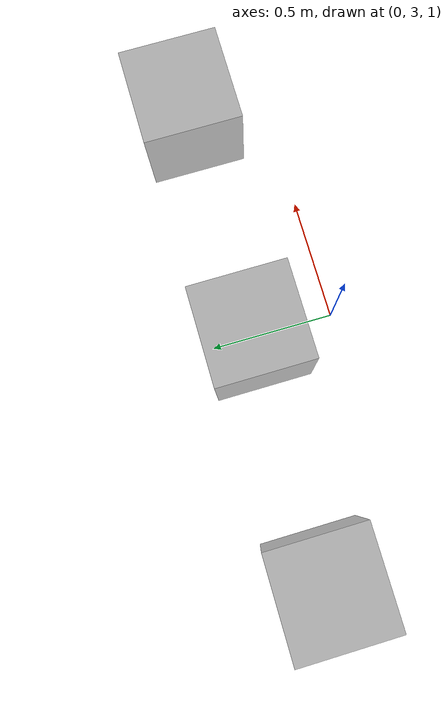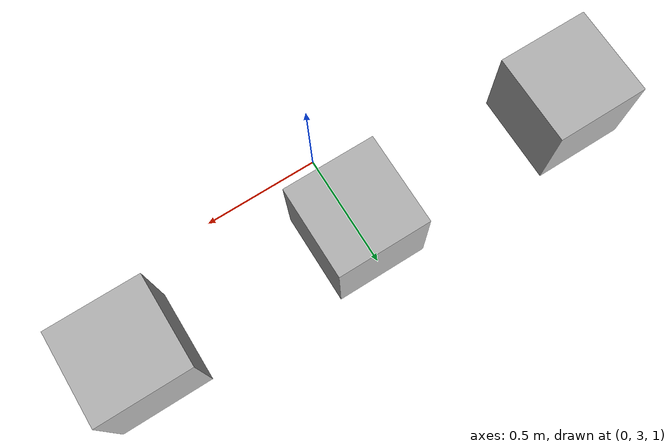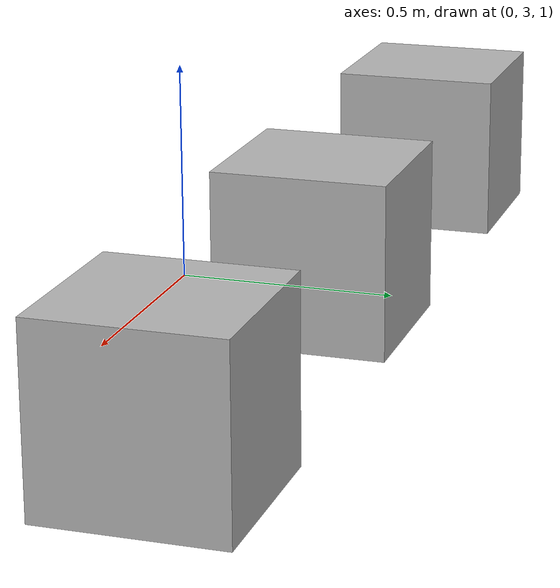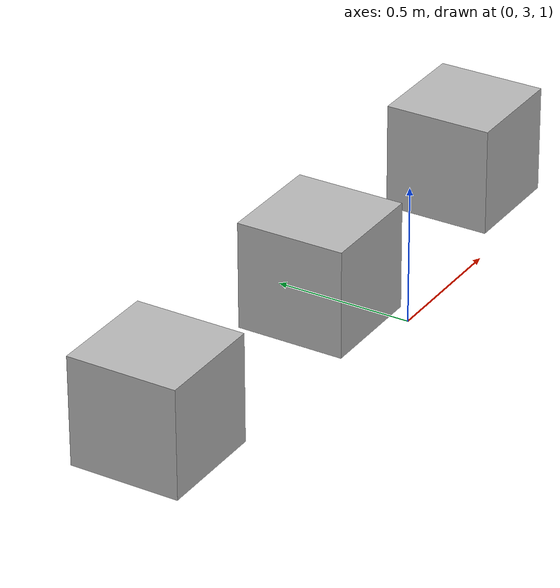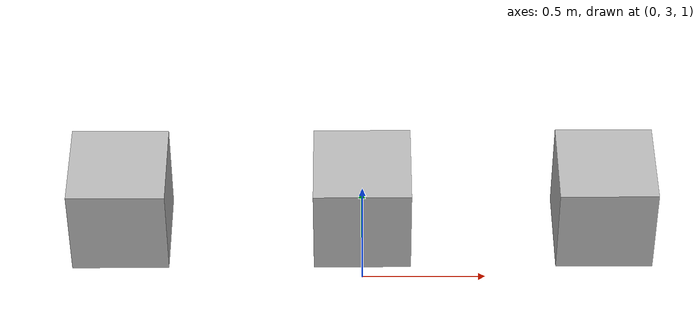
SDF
<sdf version="1.6">
 <world name="default">
  <light name="sun" type="directional">
   <pose>0 0 10 0 -0 0</pose>
   <diffuse>0.8 0.8 0.8 1</diffuse>
   <specular>0.2 0.2 0.2 1</specular>
   <attenuation>
    <range>1000</range>
    <constant>0.9</constant>
    <linear>0.01</linear>
    <quadratic>0.001</quadratic>
   </attenuation>
   <direction>-0.5 0.1 -0.9</direction>
  </light>
  <gravity>0 0 -9.8</gravity>
  <magnetic_field>6e-06 2.3e-05 -4.2e-05</magnetic_field>
  <atmosphere type="adiabatic"/>
  <physics name="default_physics" default="0" type="ode">
   <max_step_size>0.001</max_step_size>
   <real_time_factor>1</real_time_factor>
   <real_time_update_rate>1000</real_time_update_rate>
  </physics>
  <scene><ambient>0.4 0.4 0.4 1</ambient><background>0.7 0.7 0.7 1</background><shadows>1</shadows></scene>
  <spherical_coordinates>
   <surface_model>EARTH_WGS84</surface_model>
   <latitude_deg>0</latitude_deg>
   <longitude_deg>0</longitude_deg>
   <elevation>0</elevation>
   <heading_deg>0</heading_deg>
  </spherical_coordinates>
  <model name="ground_plane">
   <static>1</static>
   <link name="link">
    <collision name="collision">
     <geometry><plane><normal>0 0 1</normal><size>100 100</size></plane></geometry>
     <surface><friction><ode><mu>100</mu><mu2>50</mu2></ode></friction></surface>
    </collision>
   </link>
  </model>
  <model name="number1">
   <pose>-1 3.34 1.115 0 -0 0</pose>
   <static>1</static>
   <link name="link">
    <visual name="visual">
     <geometry><mesh><uri>model://number1/meshes/number.dae</uri><scale>0.5 0.5 0.5</scale></mesh></geometry>
     <material>
      <script>
       <uri>model://number1/materials/scripts</uri>
       <uri>model://number1/materials/textures</uri>
       <name>Number/One</name>
      </script>
     </material>
    </visual>
   </link>
  </model>
  <model name="number2">
   <pose>0 3.34 1.11504 0 -0 0</pose>
   <static>1</static>
   <link name="link">
    <visual name="visual">
     <geometry><mesh><uri>model://number1/meshes/number.dae</uri><scale>0.5 0.5 0.5</scale></mesh></geometry>
     <material>
      <script>
       <uri>model://number2/materials/scripts</uri>
       <uri>model://number2/materials/textures</uri>
       <name>Number/Two</name>
      </script>
     </material>
    </visual>
   </link>
  </model>
  <model name="number3">
   <pose>1 3.34 1.115 0 -0 0</pose>
   <static>1</static>
   <link name="link">
    <visual name="visual">
     <geometry><mesh><uri>model://number1/meshes/number.dae</uri><scale>0.5 0.5 0.5</scale></mesh></geometry>
     <material>
      <script>
       <uri>model://number3/materials/scripts</uri>
       <uri>model://number3/materials/textures</uri>
       <name>Number/Three</name>
      </script>
     </material>
    </visual>
   </link>
  </model>
 </world>
</sdf>
